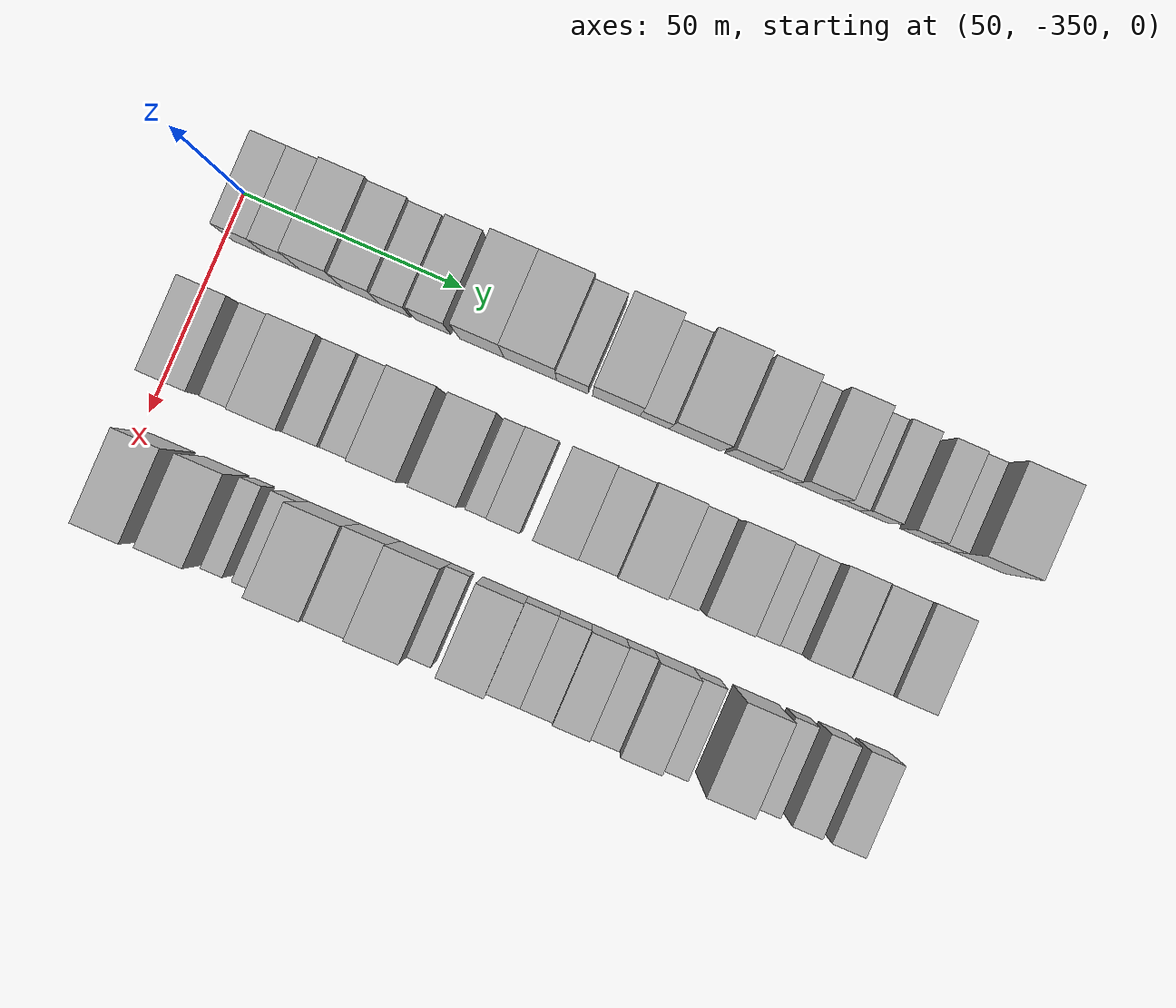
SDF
<sdf version="1.6">
 <world name="default">
  <model name="building_1">
   <static>1</static>
   <pose>50.0000 -344.0926 0 0.000000 0.000000 0.000000</pose>
   <link name="link">
    <pose>0 0 9.00 0 0 0</pose>
    <collision name="collision"><geometry><box><size>20.0000 7.8148 18.0000</size></box></geometry></collision>
    <visual name="visual">
     <cast_shadows>0</cast_shadows>
     <geometry><box><size>20.0000 7.8148 18.0000</size></box></geometry>
     <material>
      <script>
       <uri>model://HANNAS_wall/materials/scripts</uri>
       <uri>model://HANNAS_wall/materials/textures</uri>
       <name>vrc/HANNAS_wall</name>
      </script>
     </material>
    </visual>
   </link>
  </model>
  <model name="building_2">
   <static>1</static>
   <pose>50.0000 -336.4454 0 0.000000 0.000000 0.000000</pose>
   <link name="link">
    <pose>0 0 9.00 0 0 0</pose>
    <collision name="collision"><geometry><box><size>20.0000 7.4797 18.0000</size></box></geometry></collision>
    <visual name="visual">
     <cast_shadows>0</cast_shadows>
     <geometry><box><size>20.0000 7.4797 18.0000</size></box></geometry>
     <material>
      <script>
       <uri>model://HANNAS_wall/materials/scripts</uri>
       <uri>model://HANNAS_wall/materials/textures</uri>
       <name>vrc/HANNAS_wall</name>
      </script>
     </material>
    </visual>
   </link>
  </model>
  <model name="building_3">
   <static>1</static>
   <pose>50.0000 -327.8060 0 0.000000 0.000000 0.000000</pose>
   <link name="link">
    <pose>0 0 10.50 0 0 0</pose>
    <collision name="collision"><geometry><box><size>20.0000 9.7990 21.0000</size></box></geometry></collision>
    <visual name="visual">
     <cast_shadows>0</cast_shadows>
     <geometry><box><size>20.0000 9.7990 21.0000</size></box></geometry>
     <material>
      <script>
       <uri>model://HANNAS_wall/materials/scripts</uri>
       <uri>model://HANNAS_wall/materials/textures</uri>
       <name>vrc/HANNAS_wall</name>
      </script>
     </material>
    </visual>
   </link>
  </model>
  <model name="building_4">
   <static>1</static>
   <pose>50.0000 -318.6539 0 0.000000 0.000000 0.000000</pose>
   <link name="link">
    <pose>0 0 9.00 0 0 0</pose>
    <collision name="collision"><geometry><box><size>20.0000 8.5051 18.0000</size></box></geometry></collision>
    <visual name="visual">
     <cast_shadows>0</cast_shadows>
     <geometry><box><size>20.0000 8.5051 18.0000</size></box></geometry>
     <material>
      <script>
       <uri>model://HANNAS_wall/materials/scripts</uri>
       <uri>model://HANNAS_wall/materials/textures</uri>
       <name>vrc/HANNAS_wall</name>
      </script>
     </material>
    </visual>
   </link>
  </model>
  <model name="building_5">
   <static>1</static>
   <pose>50.0000 -310.8094 0 0.000000 0.000000 0.000000</pose>
   <link name="link">
    <pose>0 0 7.50 0 0 0</pose>
    <collision name="collision"><geometry><box><size>20.0000 7.1840 15.0000</size></box></geometry></collision>
    <visual name="visual">
     <cast_shadows>0</cast_shadows>
     <geometry><box><size>20.0000 7.1840 15.0000</size></box></geometry>
     <material>
      <script>
       <uri>model://HANNAS_wall/materials/scripts</uri>
       <uri>model://HANNAS_wall/materials/textures</uri>
       <name>vrc/HANNAS_wall</name>
      </script>
     </material>
    </visual>
   </link>
  </model>
  <model name="building_6">
   <static>1</static>
   <pose>50.0000 -302.1716 0 0.000000 0.000000 0.000000</pose>
   <link name="link">
    <pose>0 0 9.00 0 0 0</pose>
    <collision name="collision"><geometry><box><size>20.0000 8.0914 18.0000</size></box></geometry></collision>
    <visual name="visual">
     <cast_shadows>0</cast_shadows>
     <geometry><box><size>20.0000 8.0914 18.0000</size></box></geometry>
     <material>
      <script>
       <uri>model://HANNAS_wall/materials/scripts</uri>
       <uri>model://HANNAS_wall/materials/textures</uri>
       <name>vrc/HANNAS_wall</name>
      </script>
     </material>
    </visual>
   </link>
  </model>
  <model name="building_7">
   <static>1</static>
   <pose>50.0000 -291.0364 0 0.000000 0.000000 0.000000</pose>
   <link name="link">
    <pose>0 0 12.00 0 0 0</pose>
    <collision name="collision"><geometry><box><size>20.0000 10.1791 24.0000</size></box></geometry></collision>
    <visual name="visual">
     <cast_shadows>0</cast_shadows>
     <geometry><box><size>20.0000 10.1791 24.0000</size></box></geometry>
     <material>
      <script>
       <uri>model://HANNAS_wall/materials/scripts</uri>
       <uri>model://HANNAS_wall/materials/textures</uri>
       <name>vrc/HANNAS_wall</name>
      </script>
     </material>
    </visual>
   </link>
  </model>
  <model name="building_8">
   <static>1</static>
   <pose>50.0000 -279.9908 0 0.000000 0.000000 0.000000</pose>
   <link name="link">
    <pose>0 0 12.00 0 0 0</pose>
    <collision name="collision"><geometry><box><size>20.0000 11.9121 24.0000</size></box></geometry></collision>
    <visual name="visual">
     <cast_shadows>0</cast_shadows>
     <geometry><box><size>20.0000 11.9121 24.0000</size></box></geometry>
     <material>
      <script>
       <uri>model://HANNAS_wall/materials/scripts</uri>
       <uri>model://HANNAS_wall/materials/textures</uri>
       <name>vrc/HANNAS_wall</name>
      </script>
     </material>
    </visual>
   </link>
  </model>
  <model name="building_9">
   <static>1</static>
   <pose>50.0000 -270.4188 0 0.000000 0.000000 0.000000</pose>
   <link name="link">
    <pose>0 0 9.00 0 0 0</pose>
    <collision name="collision"><geometry><box><size>20.0000 7.2318 18.0000</size></box></geometry></collision>
    <visual name="visual">
     <cast_shadows>0</cast_shadows>
     <geometry><box><size>20.0000 7.2318 18.0000</size></box></geometry>
     <material>
      <script>
       <uri>model://HANNAS_wall/materials/scripts</uri>
       <uri>model://HANNAS_wall/materials/textures</uri>
       <name>vrc/HANNAS_wall</name>
      </script>
     </material>
    </visual>
   </link>
  </model>
  <model name="building_10">
   <static>1</static>
   <pose>50.0000 -260.4068 0 0.000000 0.000000 0.000000</pose>
   <link name="link">
    <pose>0 0 12.00 0 0 0</pose>
    <collision name="collision"><geometry><box><size>20.0000 10.7923 24.0000</size></box></geometry></collision>
    <visual name="visual">
     <cast_shadows>0</cast_shadows>
     <geometry><box><size>20.0000 10.7923 24.0000</size></box></geometry>
     <material>
      <script>
       <uri>model://HANNAS_wall/materials/scripts</uri>
       <uri>model://HANNAS_wall/materials/textures</uri>
       <name>vrc/HANNAS_wall</name>
      </script>
     </material>
    </visual>
   </link>
  </model>
  <model name="building_11">
   <static>1</static>
   <pose>50.0000 -251.6411 0 0.000000 0.000000 0.000000</pose>
   <link name="link">
    <pose>0 0 7.50 0 0 0</pose>
    <collision name="collision"><geometry><box><size>20.0000 6.7391 15.0000</size></box></geometry></collision>
    <visual name="visual">
     <cast_shadows>0</cast_shadows>
     <geometry><box><size>20.0000 6.7391 15.0000</size></box></geometry>
     <material>
      <script>
       <uri>model://HANNAS_wall/materials/scripts</uri>
       <uri>model://HANNAS_wall/materials/textures</uri>
       <name>vrc/HANNAS_wall</name>
      </script>
     </material>
    </visual>
   </link>
  </model>
  <model name="building_12">
   <static>1</static>
   <pose>50.0000 -242.3853 0 0.000000 0.000000 0.000000</pose>
   <link name="link">
    <pose>0 0 12.00 0 0 0</pose>
    <collision name="collision"><geometry><box><size>20.0000 11.7725 24.0000</size></box></geometry></collision>
    <visual name="visual">
     <cast_shadows>0</cast_shadows>
     <geometry><box><size>20.0000 11.7725 24.0000</size></box></geometry>
     <material>
      <script>
       <uri>model://HANNAS_wall/materials/scripts</uri>
       <uri>model://HANNAS_wall/materials/textures</uri>
       <name>vrc/HANNAS_wall</name>
      </script>
     </material>
    </visual>
   </link>
  </model>
  <model name="building_13">
   <static>1</static>
   <pose>50.0000 -230.5434 0 0.000000 0.000000 0.000000</pose>
   <link name="link">
    <pose>0 0 10.50 0 0 0</pose>
    <collision name="collision"><geometry><box><size>20.0000 9.9112 21.0000</size></box></geometry></collision>
    <visual name="visual">
     <cast_shadows>0</cast_shadows>
     <geometry><box><size>20.0000 9.9112 21.0000</size></box></geometry>
     <material>
      <script>
       <uri>model://HANNAS_wall/materials/scripts</uri>
       <uri>model://HANNAS_wall/materials/textures</uri>
       <name>vrc/HANNAS_wall</name>
      </script>
     </material>
    </visual>
   </link>
  </model>
  <model name="building_14">
   <static>1</static>
   <pose>50.0000 -222.6430 0 0.000000 0.000000 0.000000</pose>
   <link name="link">
    <pose>0 0 6.00 0 0 0</pose>
    <collision name="collision"><geometry><box><size>20.0000 5.8896 12.0000</size></box></geometry></collision>
    <visual name="visual">
     <cast_shadows>0</cast_shadows>
     <geometry><box><size>20.0000 5.8896 12.0000</size></box></geometry>
     <material>
      <script>
       <uri>model://HANNAS_wall/materials/scripts</uri>
       <uri>model://HANNAS_wall/materials/textures</uri>
       <name>vrc/HANNAS_wall</name>
      </script>
     </material>
    </visual>
   </link>
  </model>
  <model name="building_15">
   <static>1</static>
   <pose>50.0000 -215.0859 0 0.000000 0.000000 0.000000</pose>
   <link name="link">
    <pose>0 0 10.50 0 0 0</pose>
    <collision name="collision"><geometry><box><size>20.0000 9.2246 21.0000</size></box></geometry></collision>
    <visual name="visual">
     <cast_shadows>0</cast_shadows>
     <geometry><box><size>20.0000 9.2246 21.0000</size></box></geometry>
     <material>
      <script>
       <uri>model://HANNAS_wall/materials/scripts</uri>
       <uri>model://HANNAS_wall/materials/textures</uri>
       <name>vrc/HANNAS_wall</name>
      </script>
     </material>
    </visual>
   </link>
  </model>
  <model name="building_16">
   <static>1</static>
   <pose>50.0000 -207.7414 0 0.000000 0.000000 0.000000</pose>
   <link name="link">
    <pose>0 0 6.00 0 0 0</pose>
    <collision name="collision"><geometry><box><size>20.0000 5.4645 12.0000</size></box></geometry></collision>
    <visual name="visual">
     <cast_shadows>0</cast_shadows>
     <geometry><box><size>20.0000 5.4645 12.0000</size></box></geometry>
     <material>
      <script>
       <uri>model://HANNAS_wall/materials/scripts</uri>
       <uri>model://HANNAS_wall/materials/textures</uri>
       <name>vrc/HANNAS_wall</name>
      </script>
     </material>
    </visual>
   </link>
  </model>
  <model name="building_17">
   <static>1</static>
   <pose>50.0000 -201.7079 0 0.000000 0.000000 0.000000</pose>
   <link name="link">
    <pose>0 0 7.50 0 0 0</pose>
    <collision name="collision"><geometry><box><size>20.0000 6.6024 15.0000</size></box></geometry></collision>
    <visual name="visual">
     <cast_shadows>0</cast_shadows>
     <geometry><box><size>20.0000 6.6024 15.0000</size></box></geometry>
     <material>
      <script>
       <uri>model://HANNAS_wall/materials/scripts</uri>
       <uri>model://HANNAS_wall/materials/textures</uri>
       <name>vrc/HANNAS_wall</name>
      </script>
     </material>
    </visual>
   </link>
  </model>
  <model name="building_18">
   <static>1</static>
   <pose>50.0000 -191.9863 0 0.000000 0.000000 0.000000</pose>
   <link name="link">
    <pose>0 0 7.50 0 0 0</pose>
    <collision name="collision"><geometry><box><size>20.0000 6.8409 15.0000</size></box></geometry></collision>
    <visual name="visual">
     <cast_shadows>0</cast_shadows>
     <geometry><box><size>20.0000 6.8409 15.0000</size></box></geometry>
     <material>
      <script>
       <uri>model://HANNAS_wall/materials/scripts</uri>
       <uri>model://HANNAS_wall/materials/textures</uri>
       <name>vrc/HANNAS_wall</name>
      </script>
     </material>
    </visual>
   </link>
  </model>
  <model name="building_19">
   <static>1</static>
   <pose>50.0000 -185.9158 0 0.000000 0.000000 0.000000</pose>
   <link name="link">
    <pose>0 0 6.00 0 0 0</pose>
    <collision name="collision"><geometry><box><size>20.0000 5.3001 12.0000</size></box></geometry></collision>
    <visual name="visual">
     <cast_shadows>0</cast_shadows>
     <geometry><box><size>20.0000 5.3001 12.0000</size></box></geometry>
     <material>
      <script>
       <uri>model://HANNAS_wall/materials/scripts</uri>
       <uri>model://HANNAS_wall/materials/textures</uri>
       <name>vrc/HANNAS_wall</name>
      </script>
     </material>
    </visual>
   </link>
  </model>
  <model name="building_20">
   <static>1</static>
   <pose>50.0000 -177.3559 0 0.000000 0.000000 0.000000</pose>
   <link name="link">
    <pose>0 0 12.00 0 0 0</pose>
    <collision name="collision"><geometry><box><size>20.0000 11.8196 24.0000</size></box></geometry></collision>
    <visual name="visual">
     <cast_shadows>0</cast_shadows>
     <geometry><box><size>20.0000 11.8196 24.0000</size></box></geometry>
     <material>
      <script>
       <uri>model://HANNAS_wall/materials/scripts</uri>
       <uri>model://HANNAS_wall/materials/textures</uri>
       <name>vrc/HANNAS_wall</name>
      </script>
     </material>
    </visual>
   </link>
  </model>
  <model name="building_76">
   <static>1</static>
   <pose>82.0000 -342.7598 0 0.000000 0.000000 0.000000</pose>
   <link name="link">
    <pose>0 0 12.00 0 0 0</pose>
    <collision name="collision"><geometry><box><size>20.0000 10.4804 24.0000</size></box></geometry></collision>
    <visual name="visual">
     <cast_shadows>0</cast_shadows>
     <geometry><box><size>20.0000 10.4804 24.0000</size></box></geometry>
     <material>
      <script>
       <uri>model://HANNAS_wall/materials/scripts</uri>
       <uri>model://HANNAS_wall/materials/textures</uri>
       <name>vrc/HANNAS_wall</name>
      </script>
     </material>
    </visual>
   </link>
  </model>
  <model name="building_77">
   <static>1</static>
   <pose>82.0000 -332.8285 0 0.000000 0.000000 0.000000</pose>
   <link name="link">
    <pose>0 0 9.00 0 0 0</pose>
    <collision name="collision"><geometry><box><size>20.0000 7.3822 18.0000</size></box></geometry></collision>
    <visual name="visual">
     <cast_shadows>0</cast_shadows>
     <geometry><box><size>20.0000 7.3822 18.0000</size></box></geometry>
     <material>
      <script>
       <uri>model://HANNAS_wall/materials/scripts</uri>
       <uri>model://HANNAS_wall/materials/textures</uri>
       <name>vrc/HANNAS_wall</name>
      </script>
     </material>
    </visual>
   </link>
  </model>
  <model name="building_78">
   <static>1</static>
   <pose>82.0000 -323.9441 0 0.000000 0.000000 0.000000</pose>
   <link name="link">
    <pose>0 0 12.00 0 0 0</pose>
    <collision name="collision"><geometry><box><size>20.0000 10.3866 24.0000</size></box></geometry></collision>
    <visual name="visual">
     <cast_shadows>0</cast_shadows>
     <geometry><box><size>20.0000 10.3866 24.0000</size></box></geometry>
     <material>
      <script>
       <uri>model://HANNAS_wall/materials/scripts</uri>
       <uri>model://HANNAS_wall/materials/textures</uri>
       <name>vrc/HANNAS_wall</name>
      </script>
     </material>
    </visual>
   </link>
  </model>
  <model name="building_79">
   <static>1</static>
   <pose>82.0000 -315.0712 0 0.000000 0.000000 0.000000</pose>
   <link name="link">
    <pose>0 0 9.00 0 0 0</pose>
    <collision name="collision"><geometry><box><size>20.0000 7.3592 18.0000</size></box></geometry></collision>
    <visual name="visual">
     <cast_shadows>0</cast_shadows>
     <geometry><box><size>20.0000 7.3592 18.0000</size></box></geometry>
     <material>
      <script>
       <uri>model://HANNAS_wall/materials/scripts</uri>
       <uri>model://HANNAS_wall/materials/textures</uri>
       <name>vrc/HANNAS_wall</name>
      </script>
     </material>
    </visual>
   </link>
  </model>
  <model name="building_80">
   <static>1</static>
   <pose>82.0000 -308.2312 0 0.000000 0.000000 0.000000</pose>
   <link name="link">
    <pose>0 0 7.50 0 0 0</pose>
    <collision name="collision"><geometry><box><size>20.0000 6.3209 15.0000</size></box></geometry></collision>
    <visual name="visual">
     <cast_shadows>0</cast_shadows>
     <geometry><box><size>20.0000 6.3209 15.0000</size></box></geometry>
     <material>
      <script>
       <uri>model://HANNAS_wall/materials/scripts</uri>
       <uri>model://HANNAS_wall/materials/textures</uri>
       <name>vrc/HANNAS_wall</name>
      </script>
     </material>
    </visual>
   </link>
  </model>
  <model name="building_81">
   <static>1</static>
   <pose>82.0000 -298.8107 0 0.000000 0.000000 0.000000</pose>
   <link name="link">
    <pose>0 0 12.00 0 0 0</pose>
    <collision name="collision"><geometry><box><size>20.0000 10.5200 24.0000</size></box></geometry></collision>
    <visual name="visual">
     <cast_shadows>0</cast_shadows>
     <geometry><box><size>20.0000 10.5200 24.0000</size></box></geometry>
     <material>
      <script>
       <uri>model://HANNAS_wall/materials/scripts</uri>
       <uri>model://HANNAS_wall/materials/textures</uri>
       <name>vrc/HANNAS_wall</name>
      </script>
     </material>
    </visual>
   </link>
  </model>
  <model name="building_82">
   <static>1</static>
   <pose>82.0000 -286.3657 0 0.000000 0.000000 0.000000</pose>
   <link name="link">
    <pose>0 0 10.50 0 0 0</pose>
    <collision name="collision"><geometry><box><size>20.0000 10.3700 21.0000</size></box></geometry></collision>
    <visual name="visual">
     <cast_shadows>0</cast_shadows>
     <geometry><box><size>20.0000 10.3700 21.0000</size></box></geometry>
     <material>
      <script>
       <uri>model://HANNAS_wall/materials/scripts</uri>
       <uri>model://HANNAS_wall/materials/textures</uri>
       <name>vrc/HANNAS_wall</name>
      </script>
     </material>
    </visual>
   </link>
  </model>
  <model name="building_83">
   <static>1</static>
   <pose>82.0000 -277.7628 0 0.000000 0.000000 0.000000</pose>
   <link name="link">
    <pose>0 0 6.00 0 0 0</pose>
    <collision name="collision"><geometry><box><size>20.0000 4.8356 12.0000</size></box></geometry></collision>
    <visual name="visual">
     <cast_shadows>0</cast_shadows>
     <geometry><box><size>20.0000 4.8356 12.0000</size></box></geometry>
     <material>
      <script>
       <uri>model://HANNAS_wall/materials/scripts</uri>
       <uri>model://HANNAS_wall/materials/textures</uri>
       <name>vrc/HANNAS_wall</name>
      </script>
     </material>
    </visual>
   </link>
  </model>
  <model name="building_84">
   <static>1</static>
   <pose>82.0000 -271.6658 0 0.000000 0.000000 0.000000</pose>
   <link name="link">
    <pose>0 0 7.50 0 0 0</pose>
    <collision name="collision"><geometry><box><size>20.0000 7.3585 15.0000</size></box></geometry></collision>
    <visual name="visual">
     <cast_shadows>0</cast_shadows>
     <geometry><box><size>20.0000 7.3585 15.0000</size></box></geometry>
     <material>
      <script>
       <uri>model://HANNAS_wall/materials/scripts</uri>
       <uri>model://HANNAS_wall/materials/textures</uri>
       <name>vrc/HANNAS_wall</name>
      </script>
     </material>
    </visual>
   </link>
  </model>
  <model name="building_85">
   <static>1</static>
   <pose>82.0000 -260.1269 0 0.000000 0.000000 0.000000</pose>
   <link name="link">
    <pose>0 0 10.50 0 0 0</pose>
    <collision name="collision"><geometry><box><size>20.0000 9.7193 21.0000</size></box></geometry></collision>
    <visual name="visual">
     <cast_shadows>0</cast_shadows>
     <geometry><box><size>20.0000 9.7193 21.0000</size></box></geometry>
     <material>
      <script>
       <uri>model://HANNAS_wall/materials/scripts</uri>
       <uri>model://HANNAS_wall/materials/textures</uri>
       <name>vrc/HANNAS_wall</name>
      </script>
     </material>
    </visual>
   </link>
  </model>
  <model name="building_86">
   <static>1</static>
   <pose>82.0000 -251.0837 0 0.000000 0.000000 0.000000</pose>
   <link name="link">
    <pose>0 0 9.00 0 0 0</pose>
    <collision name="collision"><geometry><box><size>20.0000 8.3670 18.0000</size></box></geometry></collision>
    <visual name="visual">
     <cast_shadows>0</cast_shadows>
     <geometry><box><size>20.0000 8.3670 18.0000</size></box></geometry>
     <material>
      <script>
       <uri>model://HANNAS_wall/materials/scripts</uri>
       <uri>model://HANNAS_wall/materials/textures</uri>
       <name>vrc/HANNAS_wall</name>
      </script>
     </material>
    </visual>
   </link>
  </model>
  <model name="building_87">
   <static>1</static>
   <pose>82.0000 -241.6588 0 0.000000 0.000000 0.000000</pose>
   <link name="link">
    <pose>0 0 12.00 0 0 0</pose>
    <collision name="collision"><geometry><box><size>20.0000 10.4830 24.0000</size></box></geometry></collision>
    <visual name="visual">
     <cast_shadows>0</cast_shadows>
     <geometry><box><size>20.0000 10.4830 24.0000</size></box></geometry>
     <material>
      <script>
       <uri>model://HANNAS_wall/materials/scripts</uri>
       <uri>model://HANNAS_wall/materials/textures</uri>
       <name>vrc/HANNAS_wall</name>
      </script>
     </material>
    </visual>
   </link>
  </model>
  <model name="building_88">
   <static>1</static>
   <pose>82.0000 -232.7505 0 0.000000 0.000000 0.000000</pose>
   <link name="link">
    <pose>0 0 7.50 0 0 0</pose>
    <collision name="collision"><geometry><box><size>20.0000 7.3336 15.0000</size></box></geometry></collision>
    <visual name="visual">
     <cast_shadows>0</cast_shadows>
     <geometry><box><size>20.0000 7.3336 15.0000</size></box></geometry>
     <material>
      <script>
       <uri>model://HANNAS_wall/materials/scripts</uri>
       <uri>model://HANNAS_wall/materials/textures</uri>
       <name>vrc/HANNAS_wall</name>
      </script>
     </material>
    </visual>
   </link>
  </model>
  <model name="building_89">
   <static>1</static>
   <pose>82.0000 -222.8908 0 0.000000 0.000000 0.000000</pose>
   <link name="link">
    <pose>0 0 10.50 0 0 0</pose>
    <collision name="collision"><geometry><box><size>20.0000 10.3857 21.0000</size></box></geometry></collision>
    <visual name="visual">
     <cast_shadows>0</cast_shadows>
     <geometry><box><size>20.0000 10.3857 21.0000</size></box></geometry>
     <material>
      <script>
       <uri>model://HANNAS_wall/materials/scripts</uri>
       <uri>model://HANNAS_wall/materials/textures</uri>
       <name>vrc/HANNAS_wall</name>
      </script>
     </material>
    </visual>
   </link>
  </model>
  <model name="building_90">
   <static>1</static>
   <pose>82.0000 -214.5878 0 0.000000 0.000000 0.000000</pose>
   <link name="link">
    <pose>0 0 7.50 0 0 0</pose>
    <collision name="collision"><geometry><box><size>20.0000 6.2203 15.0000</size></box></geometry></collision>
    <visual name="visual">
     <cast_shadows>0</cast_shadows>
     <geometry><box><size>20.0000 6.2203 15.0000</size></box></geometry>
     <material>
      <script>
       <uri>model://HANNAS_wall/materials/scripts</uri>
       <uri>model://HANNAS_wall/materials/textures</uri>
       <name>vrc/HANNAS_wall</name>
      </script>
     </material>
    </visual>
   </link>
  </model>
  <model name="building_91">
   <static>1</static>
   <pose>82.0000 -208.8663 0 0.000000 0.000000 0.000000</pose>
   <link name="link">
    <pose>0 0 6.00 0 0 0</pose>
    <collision name="collision"><geometry><box><size>20.0000 5.2226 12.0000</size></box></geometry></collision>
    <visual name="visual">
     <cast_shadows>0</cast_shadows>
     <geometry><box><size>20.0000 5.2226 12.0000</size></box></geometry>
     <material>
      <script>
       <uri>model://HANNAS_wall/materials/scripts</uri>
       <uri>model://HANNAS_wall/materials/textures</uri>
       <name>vrc/HANNAS_wall</name>
      </script>
     </material>
    </visual>
   </link>
  </model>
  <model name="building_92">
   <static>1</static>
   <pose>82.0000 -201.8248 0 0.000000 0.000000 0.000000</pose>
   <link name="link">
    <pose>0 0 10.50 0 0 0</pose>
    <collision name="collision"><geometry><box><size>20.0000 8.8605 21.0000</size></box></geometry></collision>
    <visual name="visual">
     <cast_shadows>0</cast_shadows>
     <geometry><box><size>20.0000 8.8605 21.0000</size></box></geometry>
     <material>
      <script>
       <uri>model://HANNAS_wall/materials/scripts</uri>
       <uri>model://HANNAS_wall/materials/textures</uri>
       <name>vrc/HANNAS_wall</name>
      </script>
     </material>
    </visual>
   </link>
  </model>
  <model name="building_93">
   <static>1</static>
   <pose>82.0000 -192.0910 0 0.000000 0.000000 0.000000</pose>
   <link name="link">
    <pose>0 0 9.00 0 0 0</pose>
    <collision name="collision"><geometry><box><size>20.0000 8.6070 18.0000</size></box></geometry></collision>
    <visual name="visual">
     <cast_shadows>0</cast_shadows>
     <geometry><box><size>20.0000 8.6070 18.0000</size></box></geometry>
     <material>
      <script>
       <uri>model://HANNAS_wall/materials/scripts</uri>
       <uri>model://HANNAS_wall/materials/textures</uri>
       <name>vrc/HANNAS_wall</name>
      </script>
     </material>
    </visual>
   </link>
  </model>
  <model name="building_94">
   <static>1</static>
   <pose>82.0000 -183.4375 0 0.000000 0.000000 0.000000</pose>
   <link name="link">
    <pose>0 0 10.50 0 0 0</pose>
    <collision name="collision"><geometry><box><size>20.0000 8.7000 21.0000</size></box></geometry></collision>
    <visual name="visual">
     <cast_shadows>0</cast_shadows>
     <geometry><box><size>20.0000 8.7000 21.0000</size></box></geometry>
     <material>
      <script>
       <uri>model://HANNAS_wall/materials/scripts</uri>
       <uri>model://HANNAS_wall/materials/textures</uri>
       <name>vrc/HANNAS_wall</name>
      </script>
     </material>
    </visual>
   </link>
  </model>
  <model name="building_155">
   <static>1</static>
   <pose>114.0000 -342.8465 0 0.000000 0.000000 0.000000</pose>
   <link name="link">
    <pose>0 0 12.00 0 0 0</pose>
    <collision name="collision"><geometry><box><size>20.0000 10.3070 24.0000</size></box></geometry></collision>
    <visual name="visual">
     <cast_shadows>0</cast_shadows>
     <geometry><box><size>20.0000 10.3070 24.0000</size></box></geometry>
     <material>
      <script>
       <uri>model://HANNAS_wall/materials/scripts</uri>
       <uri>model://HANNAS_wall/materials/textures</uri>
       <name>vrc/HANNAS_wall</name>
      </script>
     </material>
    </visual>
   </link>
  </model>
  <model name="building_156">
   <static>1</static>
   <pose>114.0000 -330.5276 0 0.000000 0.000000 0.000000</pose>
   <link name="link">
    <pose>0 0 10.50 0 0 0</pose>
    <collision name="collision"><geometry><box><size>20.0000 10.3308 21.0000</size></box></geometry></collision>
    <visual name="visual">
     <cast_shadows>0</cast_shadows>
     <geometry><box><size>20.0000 10.3308 21.0000</size></box></geometry>
     <material>
      <script>
       <uri>model://HANNAS_wall/materials/scripts</uri>
       <uri>model://HANNAS_wall/materials/textures</uri>
       <name>vrc/HANNAS_wall</name>
      </script>
     </material>
    </visual>
   </link>
  </model>
  <model name="building_157">
   <static>1</static>
   <pose>114.0000 -321.9489 0 0.000000 0.000000 0.000000</pose>
   <link name="link">
    <pose>0 0 6.00 0 0 0</pose>
    <collision name="collision"><geometry><box><size>20.0000 4.8267 12.0000</size></box></geometry></collision>
    <visual name="visual">
     <cast_shadows>0</cast_shadows>
     <geometry><box><size>20.0000 4.8267 12.0000</size></box></geometry>
     <material>
      <script>
       <uri>model://HANNAS_wall/materials/scripts</uri>
       <uri>model://HANNAS_wall/materials/textures</uri>
       <name>vrc/HANNAS_wall</name>
      </script>
     </material>
    </visual>
   </link>
  </model>
  <model name="building_158">
   <static>1</static>
   <pose>114.0000 -314.6603 0 0.000000 0.000000 0.000000</pose>
   <link name="link">
    <pose>0 0 6.00 0 0 0</pose>
    <collision name="collision"><geometry><box><size>20.0000 5.7504 12.0000</size></box></geometry></collision>
    <visual name="visual">
     <cast_shadows>0</cast_shadows>
     <geometry><box><size>20.0000 5.7504 12.0000</size></box></geometry>
     <material>
      <script>
       <uri>model://HANNAS_wall/materials/scripts</uri>
       <uri>model://HANNAS_wall/materials/textures</uri>
       <name>vrc/HANNAS_wall</name>
      </script>
     </material>
    </visual>
   </link>
  </model>
  <model name="building_159">
   <static>1</static>
   <pose>114.0000 -305.8716 0 0.000000 0.000000 0.000000</pose>
   <link name="link">
    <pose>0 0 12.00 0 0 0</pose>
    <collision name="collision"><geometry><box><size>20.0000 11.8270 24.0000</size></box></geometry></collision>
    <visual name="visual">
     <cast_shadows>0</cast_shadows>
     <geometry><box><size>20.0000 11.8270 24.0000</size></box></geometry>
     <material>
      <script>
       <uri>model://HANNAS_wall/materials/scripts</uri>
       <uri>model://HANNAS_wall/materials/textures</uri>
       <name>vrc/HANNAS_wall</name>
      </script>
     </material>
    </visual>
   </link>
  </model>
  <model name="building_160">
   <static>1</static>
   <pose>114.0000 -295.3638 0 0.000000 0.000000 0.000000</pose>
   <link name="link">
    <pose>0 0 10.50 0 0 0</pose>
    <collision name="collision"><geometry><box><size>20.0000 9.1887 21.0000</size></box></geometry></collision>
    <visual name="visual">
     <cast_shadows>0</cast_shadows>
     <geometry><box><size>20.0000 9.1887 21.0000</size></box></geometry>
     <material>
      <script>
       <uri>model://HANNAS_wall/materials/scripts</uri>
       <uri>model://HANNAS_wall/materials/textures</uri>
       <name>vrc/HANNAS_wall</name>
      </script>
     </material>
    </visual>
   </link>
  </model>
  <model name="building_161">
   <static>1</static>
   <pose>114.0000 -284.9425 0 0.000000 0.000000 0.000000</pose>
   <link name="link">
    <pose>0 0 12.00 0 0 0</pose>
    <collision name="collision"><geometry><box><size>20.0000 11.6537 24.0000</size></box></geometry></collision>
    <visual name="visual">
     <cast_shadows>0</cast_shadows>
     <geometry><box><size>20.0000 11.6537 24.0000</size></box></geometry>
     <material>
      <script>
       <uri>model://HANNAS_wall/materials/scripts</uri>
       <uri>model://HANNAS_wall/materials/textures</uri>
       <name>vrc/HANNAS_wall</name>
      </script>
     </material>
    </visual>
   </link>
  </model>
  <model name="building_162">
   <static>1</static>
   <pose>114.0000 -276.4636 0 0.000000 0.000000 0.000000</pose>
   <link name="link">
    <pose>0 0 6.00 0 0 0</pose>
    <collision name="collision"><geometry><box><size>20.0000 5.3041 12.0000</size></box></geometry></collision>
    <visual name="visual">
     <cast_shadows>0</cast_shadows>
     <geometry><box><size>20.0000 5.3041 12.0000</size></box></geometry>
     <material>
      <script>
       <uri>model://HANNAS_wall/materials/scripts</uri>
       <uri>model://HANNAS_wall/materials/textures</uri>
       <name>vrc/HANNAS_wall</name>
      </script>
     </material>
    </visual>
   </link>
  </model>
  <model name="building_163">
   <static>1</static>
   <pose>114.0000 -266.6641 0 0.000000 0.000000 0.000000</pose>
   <link name="link">
    <pose>0 0 10.50 0 0 0</pose>
    <collision name="collision"><geometry><box><size>20.0000 10.2951 21.0000</size></box></geometry></collision>
    <visual name="visual">
     <cast_shadows>0</cast_shadows>
     <geometry><box><size>20.0000 10.2951 21.0000</size></box></geometry>
     <material>
      <script>
       <uri>model://HANNAS_wall/materials/scripts</uri>
       <uri>model://HANNAS_wall/materials/textures</uri>
       <name>vrc/HANNAS_wall</name>
      </script>
     </material>
    </visual>
   </link>
  </model>
  <model name="building_164">
   <static>1</static>
   <pose>114.0000 -257.8261 0 0.000000 0.000000 0.000000</pose>
   <link name="link">
    <pose>0 0 7.50 0 0 0</pose>
    <collision name="collision"><geometry><box><size>20.0000 7.3808 15.0000</size></box></geometry></collision>
    <visual name="visual">
     <cast_shadows>0</cast_shadows>
     <geometry><box><size>20.0000 7.3808 15.0000</size></box></geometry>
     <material>
      <script>
       <uri>model://HANNAS_wall/materials/scripts</uri>
       <uri>model://HANNAS_wall/materials/textures</uri>
       <name>vrc/HANNAS_wall</name>
      </script>
     </material>
    </visual>
   </link>
  </model>
  <model name="building_165">
   <static>1</static>
   <pose>114.0000 -250.5813 0 0.000000 0.000000 0.000000</pose>
   <link name="link">
    <pose>0 0 7.50 0 0 0</pose>
    <collision name="collision"><geometry><box><size>20.0000 7.1088 15.0000</size></box></geometry></collision>
    <visual name="visual">
     <cast_shadows>0</cast_shadows>
     <geometry><box><size>20.0000 7.1088 15.0000</size></box></geometry>
     <material>
      <script>
       <uri>model://HANNAS_wall/materials/scripts</uri>
       <uri>model://HANNAS_wall/materials/textures</uri>
       <name>vrc/HANNAS_wall</name>
      </script>
     </material>
    </visual>
   </link>
  </model>
  <model name="building_166">
   <static>1</static>
   <pose>114.0000 -243.0133 0 0.000000 0.000000 0.000000</pose>
   <link name="link">
    <pose>0 0 9.00 0 0 0</pose>
    <collision name="collision"><geometry><box><size>20.0000 8.0272 18.0000</size></box></geometry></collision>
    <visual name="visual">
     <cast_shadows>0</cast_shadows>
     <geometry><box><size>20.0000 8.0272 18.0000</size></box></geometry>
     <material>
      <script>
       <uri>model://HANNAS_wall/materials/scripts</uri>
       <uri>model://HANNAS_wall/materials/textures</uri>
       <name>vrc/HANNAS_wall</name>
      </script>
     </material>
    </visual>
   </link>
  </model>
  <model name="building_167">
   <static>1</static>
   <pose>114.0000 -235.7560 0 0.000000 0.000000 0.000000</pose>
   <link name="link">
    <pose>0 0 7.50 0 0 0</pose>
    <collision name="collision"><geometry><box><size>20.0000 6.4873 15.0000</size></box></geometry></collision>
    <visual name="visual">
     <cast_shadows>0</cast_shadows>
     <geometry><box><size>20.0000 6.4873 15.0000</size></box></geometry>
     <material>
      <script>
       <uri>model://HANNAS_wall/materials/scripts</uri>
       <uri>model://HANNAS_wall/materials/textures</uri>
       <name>vrc/HANNAS_wall</name>
      </script>
     </material>
    </visual>
   </link>
  </model>
  <model name="building_168">
   <static>1</static>
   <pose>114.0000 -228.0742 0 0.000000 0.000000 0.000000</pose>
   <link name="link">
    <pose>0 0 10.50 0 0 0</pose>
    <collision name="collision"><geometry><box><size>20.0000 8.8764 21.0000</size></box></geometry></collision>
    <visual name="visual">
     <cast_shadows>0</cast_shadows>
     <geometry><box><size>20.0000 8.8764 21.0000</size></box></geometry>
     <material>
      <script>
       <uri>model://HANNAS_wall/materials/scripts</uri>
       <uri>model://HANNAS_wall/materials/textures</uri>
       <name>vrc/HANNAS_wall</name>
      </script>
     </material>
    </visual>
   </link>
  </model>
  <model name="building_169">
   <static>1</static>
   <pose>114.0000 -220.6359 0 0.000000 0.000000 0.000000</pose>
   <link name="link">
    <pose>0 0 7.50 0 0 0</pose>
    <collision name="collision"><geometry><box><size>20.0000 6.0001 15.0000</size></box></geometry></collision>
    <visual name="visual">
     <cast_shadows>0</cast_shadows>
     <geometry><box><size>20.0000 6.0001 15.0000</size></box></geometry>
     <material>
      <script>
       <uri>model://HANNAS_wall/materials/scripts</uri>
       <uri>model://HANNAS_wall/materials/textures</uri>
       <name>vrc/HANNAS_wall</name>
      </script>
     </material>
    </visual>
   </link>
  </model>
  <model name="building_170">
   <static>1</static>
   <pose>114.0000 -209.4993 0 0.000000 0.000000 0.000000</pose>
   <link name="link">
    <pose>0 0 12.00 0 0 0</pose>
    <collision name="collision"><geometry><box><size>20.0000 10.2733 24.0000</size></box></geometry></collision>
    <visual name="visual">
     <cast_shadows>0</cast_shadows>
     <geometry><box><size>20.0000 10.2733 24.0000</size></box></geometry>
     <material>
      <script>
       <uri>model://HANNAS_wall/materials/scripts</uri>
       <uri>model://HANNAS_wall/materials/textures</uri>
       <name>vrc/HANNAS_wall</name>
      </script>
     </material>
    </visual>
   </link>
  </model>
  <model name="building_171">
   <static>1</static>
   <pose>114.0000 -199.7130 0 0.000000 0.000000 0.000000</pose>
   <link name="link">
    <pose>0 0 6.00 0 0 0</pose>
    <collision name="collision"><geometry><box><size>20.0000 5.2992 12.0000</size></box></geometry></collision>
    <visual name="visual">
     <cast_shadows>0</cast_shadows>
     <geometry><box><size>20.0000 5.2992 12.0000</size></box></geometry>
     <material>
      <script>
       <uri>model://HANNAS_wall/materials/scripts</uri>
       <uri>model://HANNAS_wall/materials/textures</uri>
       <name>vrc/HANNAS_wall</name>
      </script>
     </material>
    </visual>
   </link>
  </model>
  <model name="building_172">
   <static>1</static>
   <pose>114.0000 -191.7499 0 0.000000 0.000000 0.000000</pose>
   <link name="link">
    <pose>0 0 7.50 0 0 0</pose>
    <collision name="collision"><geometry><box><size>20.0000 6.6270 15.0000</size></box></geometry></collision>
    <visual name="visual">
     <cast_shadows>0</cast_shadows>
     <geometry><box><size>20.0000 6.6270 15.0000</size></box></geometry>
     <material>
      <script>
       <uri>model://HANNAS_wall/materials/scripts</uri>
       <uri>model://HANNAS_wall/materials/textures</uri>
       <name>vrc/HANNAS_wall</name>
      </script>
     </material>
    </visual>
   </link>
  </model>
  <model name="building_173">
   <static>1</static>
   <pose>114.0000 -182.7319 0 0.000000 0.000000 0.000000</pose>
   <link name="link">
    <pose>0 0 7.50 0 0 0</pose>
    <collision name="collision"><geometry><box><size>20.0000 7.4090 15.0000</size></box></geometry></collision>
    <visual name="visual">
     <cast_shadows>0</cast_shadows>
     <geometry><box><size>20.0000 7.4090 15.0000</size></box></geometry>
     <material>
      <script>
       <uri>model://HANNAS_wall/materials/scripts</uri>
       <uri>model://HANNAS_wall/materials/textures</uri>
       <name>vrc/HANNAS_wall</name>
      </script>
     </material>
    </visual>
   </link>
  </model>
 </world>
</sdf>
